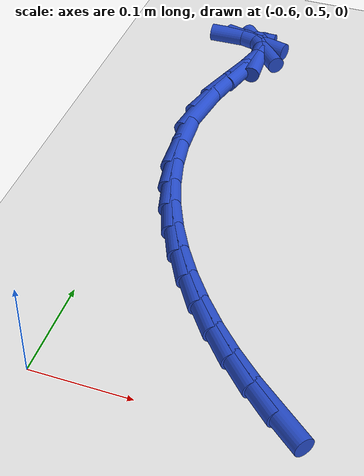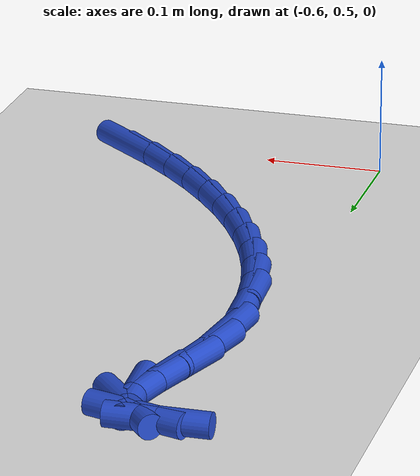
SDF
<sdf version="1.6">
 <world name="default">
  <model name="ground_plane">
   <static>1</static>
   <link name="link">
    <collision name="collision">
     <geometry><plane><normal>0 0 1</normal><size>100 100</size></plane></geometry>
     <surface><friction><ode><mu>100</mu><mu2>50</mu2></ode></friction></surface>
    </collision>
    <visual name="visual">
     <cast_shadows>0</cast_shadows>
     <geometry><plane><normal>0 0 1</normal><size>100 100</size></plane></geometry>
     <material>
      <script><uri>file://media/materials/scripts/gazebo.material</uri><name>Gazebo/WhiteGlow</name></script>
     </material>
    </visual>
   </link>
  </model>
  <model name="line">
   <link name="link_22">
    <pose>-0.3824010041290371 0.5198704846012708 0.01 0 1.57 -0.6798382243512482</pose>
    <collision name="collision">
     <geometry><cylinder><radius>0.01</radius><length>0.08</length></cylinder></geometry>
    </collision>
    <visual name="visual">
     <material>
      <script><name>Gazebo/Blue</name><uri>file://media/materials/scripts/gazebo.material</uri></script>
     </material>
     <geometry><cylinder><radius>0.01</radius><length>0.08</length></cylinder></geometry>
    </visual>
   </link>
   <link name="link_23">
    <pose>-0.4093498584260099 0.5416557725183224 0.01 0 1.57 -0.7378180528720488</pose>
    <collision name="collision">
     <geometry><cylinder><radius>0.01</radius><length>0.08</length></cylinder></geometry>
    </collision>
    <visual name="visual">
     <material>
      <script><name>Gazebo/Blue</name><uri>file://media/materials/scripts/gazebo.material</uri></script>
     </material>
     <geometry><cylinder><radius>0.01</radius><length>0.08</length></cylinder></geometry>
    </visual>
   </link>
   <link name="link_24">
    <pose>-0.43499761108740936 0.5649720514949751 0.01 0 1.57 -0.7973371385059201</pose>
    <collision name="collision">
     <geometry><cylinder><radius>0.01</radius><length>0.08</length></cylinder></geometry>
    </collision>
    <visual name="visual">
     <material>
      <script><name>Gazebo/Blue</name><uri>file://media/materials/scripts/gazebo.material</uri></script>
     </material>
     <geometry><cylinder><radius>0.01</radius><length>0.08</length></cylinder></geometry>
    </visual>
   </link>
   <link name="link_25">
    <pose>-0.4591533652901688 0.5897115931557524 0.01 0 1.57 -0.8590767394758316</pose>
    <collision name="collision">
     <geometry><cylinder><radius>0.01</radius><length>0.08</length></cylinder></geometry>
    </collision>
    <visual name="visual">
     <material>
      <script><name>Gazebo/Blue</name><uri>file://media/materials/scripts/gazebo.material</uri></script>
     </material>
     <geometry><cylinder><radius>0.01</radius><length>0.08</length></cylinder></geometry>
    </visual>
   </link>
   <link name="link_26">
    <pose>-0.48162628806213337 0.6157664581400633 0.01 0 1.57 -0.9237231046081564</pose>
    <collision name="collision">
     <geometry><cylinder><radius>0.01</radius><length>0.08</length></cylinder></geometry>
    </collision>
    <visual name="visual">
     <material>
      <script><name>Gazebo/Blue</name><uri>file://media/materials/scripts/gazebo.material</uri></script>
     </material>
     <geometry><cylinder><radius>0.01</radius><length>0.08</length></cylinder></geometry>
    </visual>
   </link>
   <link name="link_27">
    <pose>-0.5022255464311478 0.6430287070873159 0.01 0 1.57 -0.991954841910093</pose>
    <collision name="collision">
     <geometry><cylinder><radius>0.01</radius><length>0.08</length></cylinder></geometry>
    </collision>
    <visual name="visual">
     <material>
      <script><name>Gazebo/Blue</name><uri>file://media/materials/scripts/gazebo.material</uri></script>
     </material>
     <geometry><cylinder><radius>0.01</radius><length>0.08</length></cylinder></geometry>
    </visual>
   </link>
   <link name="link_28">
    <pose>-0.5207603074250569 0.6713904006369186 0.01 0 1.57 -1.0644244878383975</pose>
    <collision name="collision">
     <geometry><cylinder><radius>0.01</radius><length>0.08</length></cylinder></geometry>
    </collision>
    <visual name="visual">
     <material>
      <script><name>Gazebo/Blue</name><uri>file://media/materials/scripts/gazebo.material</uri></script>
     </material>
     <geometry><cylinder><radius>0.01</radius><length>0.08</length></cylinder></geometry>
    </visual>
   </link>
   <link name="link_29">
    <pose>-0.5370397380717057 0.7007435994282799 0.01 0 1.57 -1.1417243668034234</pose>
    <collision name="collision">
     <geometry><cylinder><radius>0.01</radius><length>0.08</length></cylinder></geometry>
    </collision>
    <visual name="visual">
     <material>
      <script><name>Gazebo/Blue</name><uri>file://media/materials/scripts/gazebo.material</uri></script>
     </material>
     <geometry><cylinder><radius>0.01</radius><length>0.08</length></cylinder></geometry>
    </visual>
   </link>
   <link name="link_30">
    <pose>-0.5508730053989387 0.7309803641008082 0.01 0 1.57 -1.2243329999260273</pose>
    <collision name="collision">
     <geometry><cylinder><radius>0.01</radius><length>0.08</length></cylinder></geometry>
    </collision>
    <visual name="visual">
     <material>
      <script><name>Gazebo/Blue</name><uri>file://media/materials/scripts/gazebo.material</uri></script>
     </material>
     <geometry><cylinder><radius>0.01</radius><length>0.08</length></cylinder></geometry>
    </visual>
   </link>
   <link name="link_31">
    <pose>-0.5620692764346011 0.7619927552939117 0.01 0 1.57 -1.3125405901365217</pose>
    <collision name="collision">
     <geometry><cylinder><radius>0.01</radius><length>0.08</length></cylinder></geometry>
    </collision>
    <visual name="visual">
     <material>
      <script><name>Gazebo/Blue</name><uri>file://media/materials/scripts/gazebo.material</uri></script>
     </material>
     <geometry><cylinder><radius>0.01</radius><length>0.08</length></cylinder></geometry>
    </visual>
   </link>
   <link name="link_32">
    <pose>-0.5704377182065375 0.7936728336469991 0.01 0 1.57 -1.406357694199434</pose>
    <collision name="collision">
     <geometry><cylinder><radius>0.01</radius><length>0.08</length></cylinder></geometry>
    </collision>
    <visual name="visual">
     <material>
      <script><name>Gazebo/Blue</name><uri>file://media/materials/scripts/gazebo.material</uri></script>
     </material>
     <geometry><cylinder><radius>0.01</radius><length>0.08</length></cylinder></geometry>
    </visual>
   </link>
   <link name="link_33">
    <pose>-0.5757874977425932 0.8259126597994789 0.01 0 1.57 -1.5054207553811982</pose>
    <collision name="collision">
     <geometry><cylinder><radius>0.01</radius><length>0.08</length></cylinder></geometry>
    </collision>
    <visual name="visual">
     <material>
      <script><name>Gazebo/Blue</name><uri>file://media/materials/scripts/gazebo.material</uri></script>
     </material>
     <geometry><cylinder><radius>0.01</radius><length>0.08</length></cylinder></geometry>
    </visual>
   </link>
   <link name="link_35">
    <pose>-0.57666773821844 0.8916397980602478 0.01 0 1.57 1.4260096984658304</pose>
    <collision name="collision">
     <geometry><cylinder><radius>0.01</radius><length>0.08</length></cylinder></geometry>
    </collision>
    <visual name="visual">
     <material>
      <script><name>Gazebo/Blue</name><uri>file://media/materials/scripts/gazebo.material</uri></script>
     </material>
     <geometry><cylinder><radius>0.01</radius><length>0.08</length></cylinder></geometry>
    </visual>
   </link>
   <link name="link_36">
    <pose>-0.5718165332139213 0.9249112314473542 0.01 0 1.57 1.3178987571737524</pose>
    <collision name="collision">
     <geometry><cylinder><radius>0.01</radius><length>0.08</length></cylinder></geometry>
    </collision>
    <visual name="visual">
     <material>
      <script><name>Gazebo/Blue</name><uri>file://media/materials/scripts/gazebo.material</uri></script>
     </material>
     <geometry><cylinder><radius>0.01</radius><length>0.08</length></cylinder></geometry>
    </visual>
   </link>
   <link name="link_37">
    <pose>-0.5631854430144275 0.9583093147125279 0.01 0 1.57 1.2435623258044026</pose>
    <collision name="collision">
     <geometry><cylinder><radius>0.01</radius><length>0.08</length></cylinder></geometry>
    </collision>
    <visual name="visual">
     <material>
      <script><name>Gazebo/Blue</name><uri>file://media/materials/scripts/gazebo.material</uri></script>
     </material>
     <geometry><cylinder><radius>0.01</radius><length>0.08</length></cylinder></geometry>
    </visual>
   </link>
   <link name="link_38">
    <pose>-0.5521888733167679 0.9907057857998683 0.01 0 1.57 1.3042515144942324</pose>
    <collision name="collision">
     <geometry><cylinder><radius>0.01</radius><length>0.08</length></cylinder></geometry>
    </collision>
    <visual name="visual">
     <material>
      <script><name>Gazebo/Blue</name><uri>file://media/materials/scripts/gazebo.material</uri></script>
     </material>
     <geometry><cylinder><radius>0.01</radius><length>0.08</length></cylinder></geometry>
    </visual>
   </link>
   <link name="link_39">
    <pose>-0.5446983635642249 1.0181393463159147 0.01 0 1.57 -1.5069700538517636</pose>
    <collision name="collision">
     <geometry><cylinder><radius>0.01</radius><length>0.08</length></cylinder></geometry>
    </collision>
    <visual name="visual">
     <material>
      <script><name>Gazebo/Blue</name><uri>file://media/materials/scripts/gazebo.material</uri></script>
     </material>
     <geometry><cylinder><radius>0.01</radius><length>0.08</length></cylinder></geometry>
    </visual>
   </link>
   <link name="link_40">
    <pose>-0.5459192541731175 1.0372417036522428 0.01 0 1.57 -0.8416801528754385</pose>
    <collision name="collision">
     <geometry><cylinder><radius>0.01</radius><length>0.08</length></cylinder></geometry>
    </collision>
    <visual name="visual">
     <material>
      <script><name>Gazebo/Blue</name><uri>file://media/materials/scripts/gazebo.material</uri></script>
     </material>
     <geometry><cylinder><radius>0.01</radius><length>0.08</length></cylinder></geometry>
    </visual>
   </link>
   <link name="link_41">
    <pose>-0.5559627871671851 1.0484845426080276 0.01 0 1.57 -0.25786241157151585</pose>
    <collision name="collision">
     <geometry><cylinder><radius>0.01</radius><length>0.08</length></cylinder></geometry>
    </collision>
    <visual name="visual">
     <material>
      <script><name>Gazebo/Blue</name><uri>file://media/materials/scripts/gazebo.material</uri></script>
     </material>
     <geometry><cylinder><radius>0.01</radius><length>0.08</length></cylinder></geometry>
    </visual>
   </link>
   <link name="link_42">
    <pose>-0.5738100465247395 1.0531914713311903 0.01 0 1.57 0.02051400773669302</pose>
    <collision name="collision">
     <geometry><cylinder><radius>0.01</radius><length>0.08</length></cylinder></geometry>
    </collision>
    <visual name="visual">
     <material>
      <script><name>Gazebo/Blue</name><uri>file://media/materials/scripts/gazebo.material</uri></script>
     </material>
     <geometry><cylinder><radius>0.01</radius><length>0.08</length></cylinder></geometry>
    </visual>
   </link>
  </model>
 </world>
</sdf>
